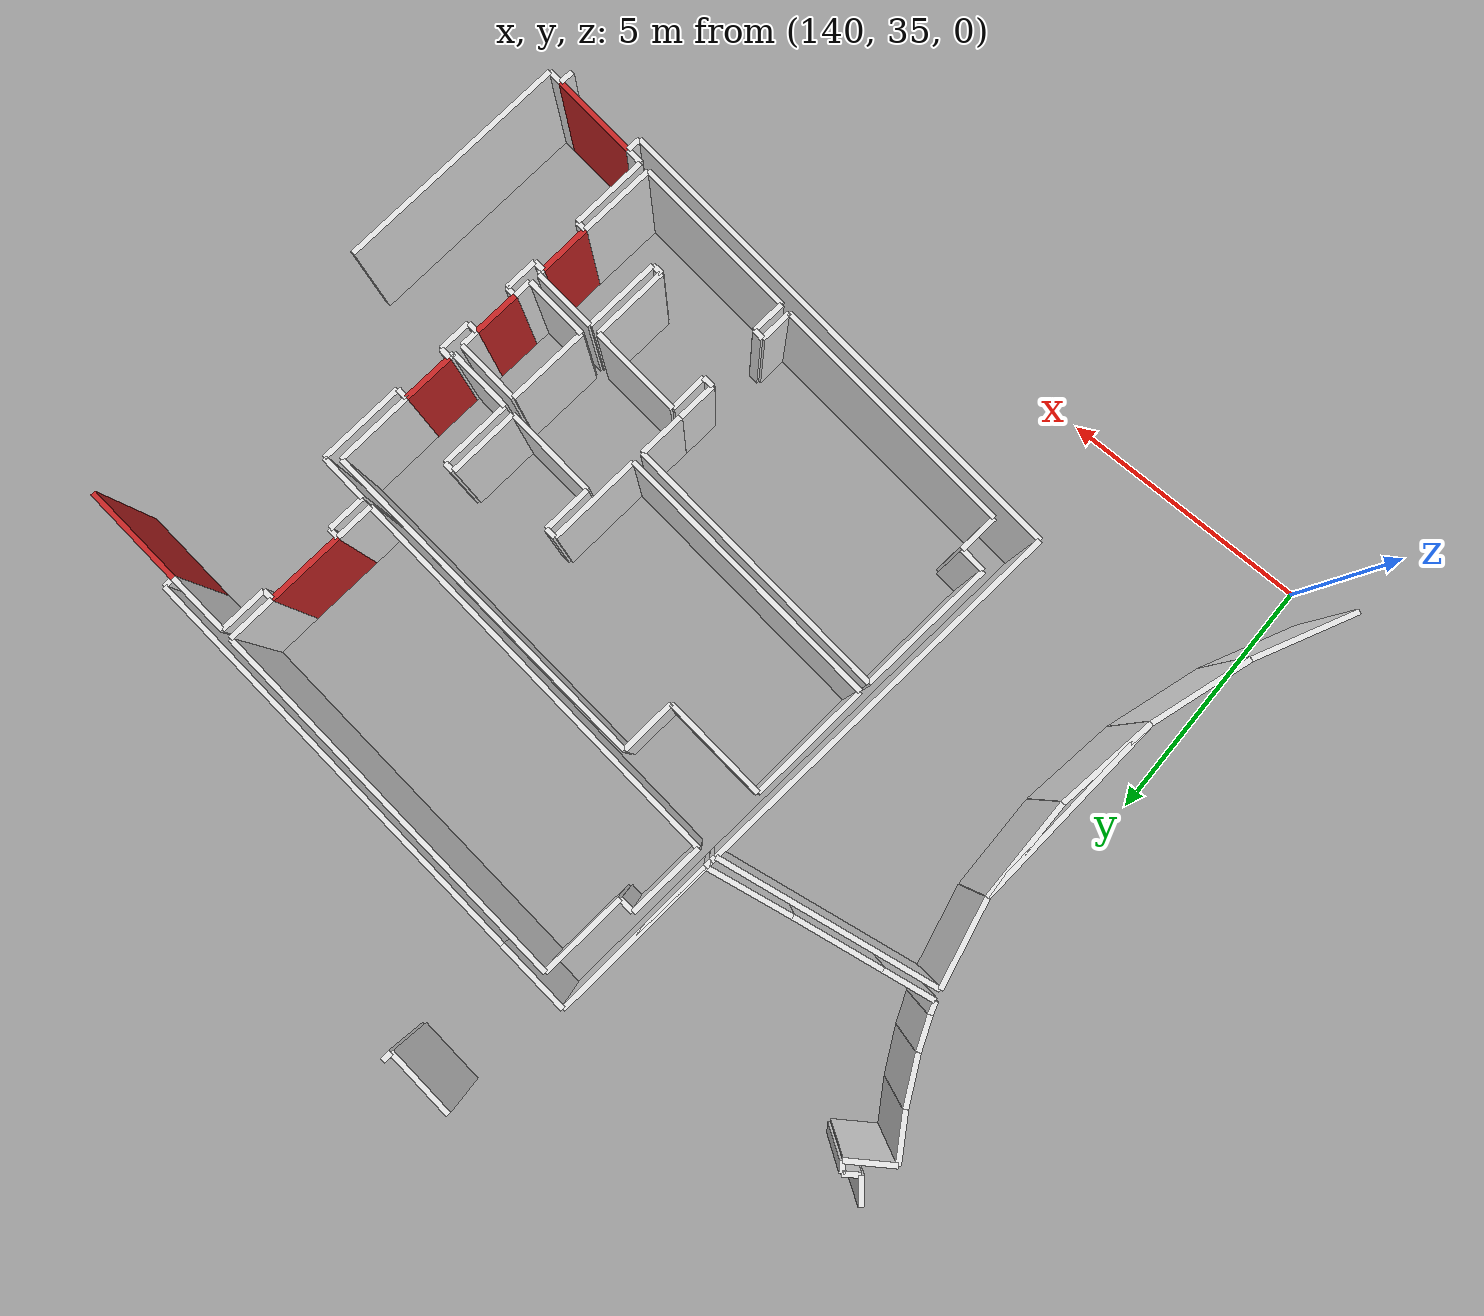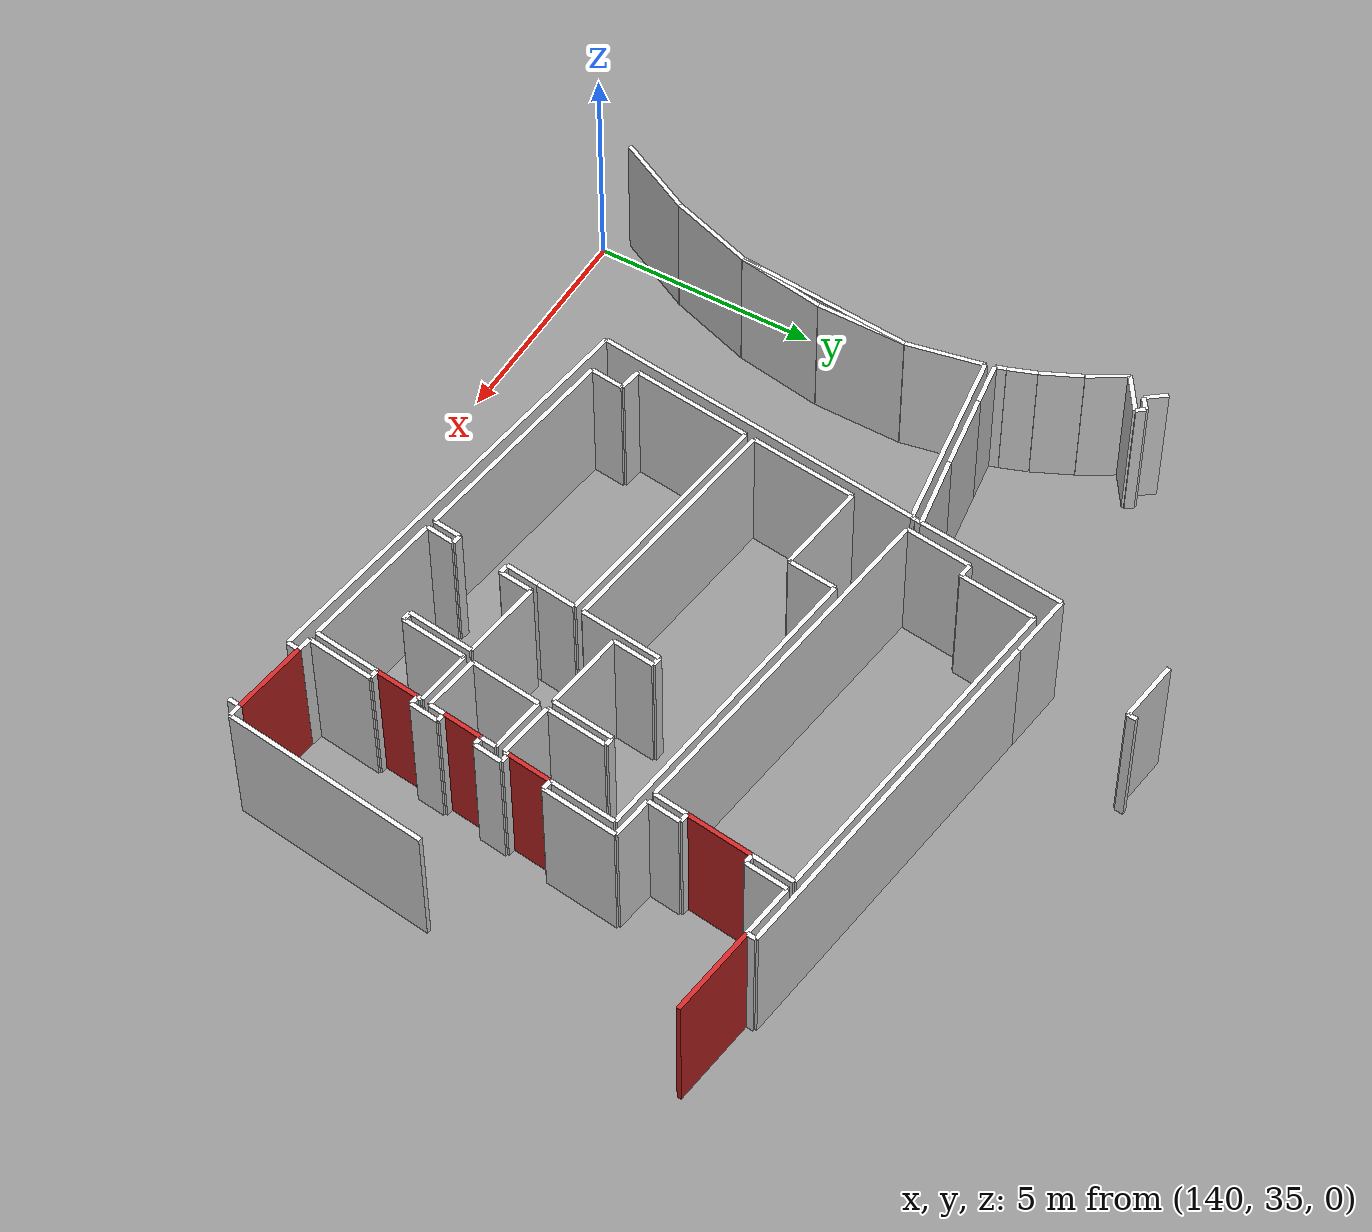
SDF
<sdf version="1.6">
 <world name="default">
  <model name="wall_153.8_39.0">
   <static>true</static>
   <pose>153.77499999999418 38.99500000011176 1.5 0 0 -1.6814535479881518</pose>
   <link name="link">
    <visual name="visual">
     <geometry><box><size>0.9960923654221514 0.1 3</size></box></geometry>
     <material>
      <script><uri>file://media/materials/scripts/gazebo.material</uri><name>Gazebo/Red</name></script>
     </material>
    </visual>
   </link>
  </model>
  <model name="wall_153.7_45.9">
   <static>true</static>
   <pose>153.6600000000035 45.92999999993481 1.5 0 0 -1.6918235466009592</pose>
   <link name="link">
    <visual name="visual">
     <geometry><box><size>1.4909057649436974 0.1 3</size></box></geometry>
     <material>
      <script><uri>file://media/materials/scripts/gazebo.material</uri><name>Gazebo/Red</name></script>
     </material>
    </visual>
   </link>
  </model>
  <model name="wall_154.0_40.6">
   <static>true</static>
   <pose>153.9649999999965 40.574999999953434 1.5 0 0 -1.693768196390317</pose>
   <link name="link">
    <visual name="visual">
     <geometry><box><size>0.8967719889926413 0.1 3</size></box></geometry>
     <material>
      <script><uri>file://media/materials/scripts/gazebo.material</uri><name>Gazebo/Red</name></script>
     </material>
    </visual>
   </link>
  </model>
  <model name="wall_156.3_47.3">
   <static>true</static>
   <pose>156.25500000000466 47.32000000006519 1.5 0 0 -0.12002333835124222</pose>
   <link name="link">
    <visual name="visual">
     <geometry><box><size>2.004420115606183 0.1 3</size></box></geometry>
     <material>
      <script><uri>file://media/materials/scripts/gazebo.material</uri><name>Gazebo/Red</name></script>
     </material>
    </visual>
   </link>
  </model>
  <model name="wall_154.2_42.2">
   <static>true</static>
   <pose>154.15000000002328 42.15500000002794 1.5 0 0 -1.6914199953995817</pose>
   <link name="link">
    <visual name="visual">
     <geometry><box><size>0.997246208074735 0.1 3</size></box></geometry>
     <material>
      <script><uri>file://media/materials/scripts/gazebo.material</uri><name>Gazebo/Red</name></script>
     </material>
    </visual>
   </link>
  </model>
  <model name="wall_154.9_36.9">
   <static>true</static>
   <pose>154.86999999999534 36.85000000009313 1.5 0 0 -0.11990398547329398</pose>
   <link name="link">
    <visual name="visual">
     <geometry><box><size>1.6720047847367918 0.1 3</size></box></geometry>
     <material>
      <script><uri>file://media/materials/scripts/gazebo.material</uri><name>Gazebo/Red</name></script>
     </material>
    </visual>
   </link>
  </model>
  <model name="wall_150.4_39.6">
   <static>true</static>
   <pose>150.3649999999907 39.61500000022352 1.5 0 0 1.4513674008194029</pose>
   <link name="link">
    <visual name="visual">
     <geometry><box><size>0.7553806987169667 0.1 3</size></box></geometry>
     <material>
      <script><uri>file://media/materials/scripts/gazebo.material</uri><name>Gazebo/White</name></script>
     </material>
    </visual>
   </link>
  </model>
  <model name="wall_150.5_40.4">
   <static>true</static>
   <pose>150.4649999999965 40.43000000016764 1.5 0 0 1.4464413321830076</pose>
   <link name="link">
    <visual name="visual">
     <geometry><box><size>0.8868483522074317 0.1 3</size></box></geometry>
     <material>
      <script><uri>file://media/materials/scripts/gazebo.material</uri><name>Gazebo/White</name></script>
     </material>
    </visual>
   </link>
  </model>
  <model name="wall_147.8_41.2">
   <static>true</static>
   <pose>147.83500000002095 41.18500000005588 1.5 0 0 3.0248080581405947</pose>
   <link name="link">
    <visual name="visual">
     <geometry><box><size>5.406829015218547 0.1 3</size></box></geometry>
     <material>
      <script><uri>file://media/materials/scripts/gazebo.material</uri><name>Gazebo/White</name></script>
     </material>
    </visual>
   </link>
  </model>
  <model name="wall_145.0_40.2">
   <static>true</static>
   <pose>144.9900000000198 40.16500000003725 1.5 0 0 -1.690077564147906</pose>
   <link name="link">
    <visual name="visual">
     <geometry><box><size>2.689107658612167 0.1 3</size></box></geometry>
     <material>
      <script><uri>file://media/materials/scripts/gazebo.material</uri><name>Gazebo/White</name></script>
     </material>
    </visual>
   </link>
  </model>
  <model name="wall_145.1_38.8">
   <static>true</static>
   <pose>145.0800000000163 38.800000000046566 1.5 0 0 -0.11942892612851068</pose>
   <link name="link">
    <visual name="visual">
     <geometry><box><size>0.5035871324872246 0.1 3</size></box></geometry>
     <material>
      <script><uri>file://media/materials/scripts/gazebo.material</uri><name>Gazebo/White</name></script>
     </material>
    </visual>
   </link>
  </model>
  <model name="wall_145.3_38.4">
   <static>true</static>
   <pose>145.2850000000035 38.389999999897555 1.5 0 0 -1.6886684299881376</pose>
   <link name="link">
    <visual name="visual">
     <geometry><box><size>0.7653103947893748 0.1 3</size></box></geometry>
     <material>
      <script><uri>file://media/materials/scripts/gazebo.material</uri><name>Gazebo/White</name></script>
     </material>
    </visual>
   </link>
  </model>
  <model name="wall_147.7_37.7">
   <static>true</static>
   <pose>147.67499999998836 37.7249999998603 1.5 0 0 -0.11651301006280392</pose>
   <link name="link">
    <visual name="visual">
     <geometry><box><size>4.90324382422122 0.1 3</size></box></geometry>
     <material>
      <script><uri>file://media/materials/scripts/gazebo.material</uri><name>Gazebo/White</name></script>
     </material>
    </visual>
   </link>
  </model>
  <model name="wall_150.1_37.8">
   <static>true</static>
   <pose>150.14499999998952 37.75499999988824 1.5 0 0 1.4601391055905788</pose>
   <link name="link">
    <visual name="visual">
     <geometry><box><size>0.6338769595593153 0.1 3</size></box></geometry>
     <material>
      <script><uri>file://media/materials/scripts/gazebo.material</uri><name>Gazebo/White</name></script>
     </material>
    </visual>
   </link>
  </model>
  <model name="wall_150.3_38.1">
   <static>true</static>
   <pose>150.27999999999884 38.05499999993481 1.5 0 0 -0.14888994659904642</pose>
   <link name="link">
    <visual name="visual">
     <geometry><box><size>0.20223748414268597 0.1 3</size></box></geometry>
     <material>
      <script><uri>file://media/materials/scripts/gazebo.material</uri><name>Gazebo/White</name></script>
     </material>
    </visual>
   </link>
  </model>
  <model name="wall_150.3_37.7">
   <static>true</static>
   <pose>150.3399999999965 37.71999999997206 1.5 0 0 -1.695151321341658</pose>
   <link name="link">
    <visual name="visual">
     <geometry><box><size>0.6449806199952839 0.1 3</size></box></geometry>
     <material>
      <script><uri>file://media/materials/scripts/gazebo.material</uri><name>Gazebo/White</name></script>
     </material>
    </visual>
   </link>
  </model>
  <model name="wall_151.9_37.2">
   <static>true</static>
   <pose>151.9199999999837 37.20999999996275 1.5 0 0 -0.11675057835937525</pose>
   <link name="link">
    <visual name="visual">
     <geometry><box><size>3.2622078413023767 0.1 3</size></box></geometry>
     <material>
      <script><uri>file://media/materials/scripts/gazebo.material</uri><name>Gazebo/White</name></script>
     </material>
    </visual>
   </link>
  </model>
  <model name="wall_153.6_37.8">
   <static>true</static>
   <pose>153.62999999997555 37.76000000000931 1.5 0 0 1.449769106988834</pose>
   <link name="link">
    <visual name="visual">
     <geometry><box><size>1.4909057649436974 0.1 3</size></box></geometry>
     <material>
      <script><uri>file://media/materials/scripts/gazebo.material</uri><name>Gazebo/White</name></script>
     </material>
    </visual>
   </link>
  </model>
  <model name="wall_153.8_39.5">
   <static>true</static>
   <pose>153.83500000002095 39.54000000003725 1.5 0 0 1.4711276738426837</pose>
   <link name="link">
    <visual name="visual">
     <geometry><box><size>0.10049875584145537 0.1 3</size></box></geometry>
     <material>
      <script><uri>file://media/materials/scripts/gazebo.material</uri><name>Gazebo/White</name></script>
     </material>
    </visual>
   </link>
  </model>
  <model name="wall_153.2_39.7">
   <static>true</static>
   <pose>153.22000000000116 39.65999999991618 1.5 0 0 3.0291655226601732</pose>
   <link name="link">
    <visual name="visual">
     <geometry><box><size>1.2478781992477335 0.1 3</size></box></geometry>
     <material>
      <script><uri>file://media/materials/scripts/gazebo.material</uri><name>Gazebo/White</name></script>
     </material>
    </visual>
   </link>
  </model>
  <model name="wall_152.5_39.0">
   <static>true</static>
   <pose>152.51499999998487 38.98999999999069 1.5 0 0 -1.6851599802083586</pose>
   <link name="link">
    <visual name="visual">
     <geometry><box><size>1.4897315194152685 0.1 3</size></box></geometry>
     <material>
      <script><uri>file://media/materials/scripts/gazebo.material</uri><name>Gazebo/White</name></script>
     </material>
    </visual>
   </link>
  </model>
  <model name="wall_152.3_38.3">
   <static>true</static>
   <pose>152.3299999999872 38.26000000000931 1.5 0 0 3.0419240010121844</pose>
   <link name="link">
    <visual name="visual">
     <geometry><box><size>0.20099751243585498 0.1 3</size></box></geometry>
     <material>
      <script><uri>file://media/materials/scripts/gazebo.material</uri><name>Gazebo/White</name></script>
     </material>
    </visual>
   </link>
  </model>
  <model name="wall_152.3_39.0">
   <static>true</static>
   <pose>152.31500000000233 39.01000000000931 1.5 0 0 1.4564326733426174</pose>
   <link name="link">
    <visual name="visual">
     <geometry><box><size>1.4897315194219107 0.1 3</size></box></geometry>
     <material>
      <script><uri>file://media/materials/scripts/gazebo.material</uri><name>Gazebo/White</name></script>
     </material>
    </visual>
   </link>
  </model>
  <model name="wall_151.5_39.9">
   <static>true</static>
   <pose>151.50500000000466 39.85499999998137 1.5 0 0 3.0248080581431034</pose>
   <link name="link">
    <visual name="visual">
     <geometry><box><size>1.8022763384447233 0.1 3</size></box></geometry>
     <material>
      <script><uri>file://media/materials/scripts/gazebo.material</uri><name>Gazebo/White</name></script>
     </material>
    </visual>
   </link>
  </model>
  <model name="wall_150.6_39.6">
   <static>true</static>
   <pose>150.57000000000698 39.59000000008382 1.5 0 0 -1.6784861976067038</pose>
   <link name="link">
    <visual name="visual">
     <geometry><box><size>0.7443117623918901 0.1 3</size></box></geometry>
     <material>
      <script><uri>file://media/materials/scripts/gazebo.material</uri><name>Gazebo/White</name></script>
     </material>
    </visual>
   </link>
  </model>
  <model name="wall_150.4_39.2">
   <static>true</static>
   <pose>150.42500000001746 39.230000000214204 1.5 0 0 3.0466409471685547</pose>
   <link name="link">
    <visual name="visual">
     <geometry><box><size>0.21095023111991618 0.1 3</size></box></geometry>
     <material>
      <script><uri>file://media/materials/scripts/gazebo.material</uri><name>Gazebo/White</name></script>
     </material>
    </visual>
   </link>
  </model>
  <model name="wall_153.8_47.1">
   <static>true</static>
   <pose>153.80499999999302 47.139999999897555 1.5 0 0 -1.6872877874817485</pose>
   <link name="link">
    <visual name="visual">
     <geometry><box><size>0.9464142855493431 0.1 3</size></box></geometry>
     <material>
      <script><uri>file://media/materials/scripts/gazebo.material</uri><name>Gazebo/White</name></script>
     </material>
    </visual>
   </link>
  </model>
  <model name="wall_153.5_44.8">
   <static>true</static>
   <pose>153.52499999999418 44.81499999994412 1.5 0 0 -1.6902252528468988</pose>
   <link name="link">
    <visual name="visual">
     <geometry><box><size>0.7553806987239018 0.1 3</size></box></geometry>
     <material>
      <script><uri>file://media/materials/scripts/gazebo.material</uri><name>Gazebo/White</name></script>
     </material>
    </visual>
   </link>
  </model>
  <model name="wall_149.6_44.9">
   <static>true</static>
   <pose>149.55499999999302 44.91500000003725 1.5 0 0 3.0211592075440525</pose>
   <link name="link">
    <visual name="visual">
     <geometry><box><size>7.907275131168029 0.1 3</size></box></geometry>
     <material>
      <script><uri>file://media/materials/scripts/gazebo.material</uri><name>Gazebo/White</name></script>
     </material>
    </visual>
   </link>
  </model>
  <model name="wall_145.7_46.1">
   <static>true</static>
   <pose>145.72000000000116 46.13000000012107 1.5 0 0 1.449769106988834</pose>
   <link name="link">
    <visual name="visual">
     <geometry><box><size>1.4909057649436974 0.1 3</size></box></geometry>
     <material>
      <script><uri>file://media/materials/scripts/gazebo.material</uri><name>Gazebo/White</name></script>
     </material>
    </visual>
   </link>
  </model>
  <model name="wall_146.0_46.9">
   <static>true</static>
   <pose>145.95999999999185 46.85000000009313 1.5 0 0 -0.132551532423765</pose>
   <link name="link">
    <visual name="visual">
     <geometry><box><size>0.3026549190018152 0.1 3</size></box></geometry>
     <material>
      <script><uri>file://media/materials/scripts/gazebo.material</uri><name>Gazebo/White</name></script>
     </material>
    </visual>
   </link>
  </model>
  <model name="wall_146.2_47.7">
   <static>true</static>
   <pose>146.20999999999185 47.675000000046566 1.5 0 0 1.4530010049136584</pose>
   <link name="link">
    <visual name="visual">
     <geometry><box><size>1.7017931718677757 0.1 3</size></box></geometry>
     <material>
      <script><uri>file://media/materials/scripts/gazebo.material</uri><name>Gazebo/White</name></script>
     </material>
    </visual>
   </link>
  </model>
  <model name="wall_150.1_48.1">
   <static>true</static>
   <pose>150.08499999999185 48.06499999994412 1.5 0 0 -0.11995117374483057</pose>
   <link name="link">
    <visual name="visual">
     <geometry><box><size>7.604643318400634 0.1 3</size></box></geometry>
     <material>
      <script><uri>file://media/materials/scripts/gazebo.material</uri><name>Gazebo/White</name></script>
     </material>
    </visual>
   </link>
  </model>
  <model name="wall_154.0_41.2">
   <static>true</static>
   <pose>154.04000000000815 41.18999999994412 1.5 0 0 1.4536875822379653</pose>
   <link name="link">
    <visual name="visual">
     <geometry><box><size>0.34234485522203445 0.1 3</size></box></geometry>
     <material>
      <script><uri>file://media/materials/scripts/gazebo.material</uri><name>Gazebo/White</name></script>
     </material>
    </visual>
   </link>
  </model>
  <model name="wall_153.4_41.4">
   <static>true</static>
   <pose>153.43499999999767 41.43499999982305 1.5 0 0 3.022163727644903</pose>
   <link name="link">
    <visual name="visual">
     <geometry><box><size>1.258967831190321 0.1 3</size></box></geometry>
     <material>
      <script><uri>file://media/materials/scripts/gazebo.material</uri><name>Gazebo/White</name></script>
     </material>
    </visual>
   </link>
  </model>
  <model name="wall_152.7_40.7">
   <static>true</static>
   <pose>152.7149999999965 40.71999999997206 1.5 0 0 -1.6904748161031404</pose>
   <link name="link">
    <visual name="visual">
     <geometry><box><size>1.5913830458958753 0.1 3</size></box></geometry>
     <material>
      <script><uri>file://media/materials/scripts/gazebo.material</uri><name>Gazebo/White</name></script>
     </material>
    </visual>
   </link>
  </model>
  <model name="wall_153.2_39.9">
   <static>true</static>
   <pose>153.24499999999534 39.85499999998137 1.5 0 0 -0.11942892631213106</pose>
   <link name="link">
    <visual name="visual">
     <geometry><box><size>1.2589678312458021 0.1 3</size></box></geometry>
     <material>
      <script><uri>file://media/materials/scripts/gazebo.material</uri><name>Gazebo/White</name></script>
     </material>
    </visual>
   </link>
  </model>
  <model name="wall_153.9_40.0">
   <static>true</static>
   <pose>153.88999999998487 39.954999999841675 1.5 0 0 1.4570043197403058</pose>
   <link name="link">
    <visual name="visual">
     <geometry><box><size>0.35227829916632136 0.1 3</size></box></geometry>
     <material>
      <script><uri>file://media/materials/scripts/gazebo.material</uri><name>Gazebo/White</name></script>
     </material>
    </visual>
   </link>
  </model>
  <model name="wall_155.3_47.5">
   <static>true</static>
   <pose>155.27000000001863 47.54000000003725 1.5 0 0 1.4711276743037347</pose>
   <link name="link">
    <visual name="visual">
     <geometry><box><size>0.20099751260961132 0.1 3</size></box></geometry>
     <material>
      <script><uri>file://media/materials/scripts/gazebo.material</uri><name>Gazebo/White</name></script>
     </material>
    </visual>
   </link>
  </model>
  <model name="wall_151.2_48.1">
   <static>true</static>
   <pose>151.21000000002095 48.13000000012107 1.5 0 0 3.021776205795211</pose>
   <link name="link">
    <visual name="visual">
     <geometry><box><size>8.198780397119496 0.1 3</size></box></geometry>
     <material>
      <script><uri>file://media/materials/scripts/gazebo.material</uri><name>Gazebo/White</name></script>
     </material>
    </visual>
   </link>
  </model>
  <model name="wall_147.5_51.2">
   <static>true</static>
   <pose>147.45000000001164 51.175000000046566 1.5 0 0 1.4659193879370842</pose>
   <link name="link">
    <visual name="visual">
     <geometry><box><size>0.19104973169180559 0.1 3</size></box></geometry>
     <material>
      <script><uri>file://media/materials/scripts/gazebo.material</uri><name>Gazebo/White</name></script>
     </material>
    </visual>
   </link>
  </model>
  <model name="wall_153.8_38.5">
   <static>true</static>
   <pose>153.81499999997322 38.48999999999069 1.5 0 0 3.0367157147638757</pose>
   <link name="link">
    <visual name="visual">
     <geometry><box><size>0.19104973174969345 0.1 3</size></box></geometry>
     <material>
      <script><uri>file://media/materials/scripts/gazebo.material</uri><name>Gazebo/White</name></script>
     </material>
    </visual>
   </link>
  </model>
  <model name="wall_153.9_39.5">
   <static>true</static>
   <pose>153.93000000002212 39.480000000214204 1.5 0 0 -0.09966865257760905</pose>
   <link name="link">
    <visual name="visual">
     <geometry><box><size>0.20099751243585498 0.1 3</size></box></geometry>
     <material>
      <script><uri>file://media/materials/scripts/gazebo.material</uri><name>Gazebo/White</name></script>
     </material>
    </visual>
   </link>
  </model>
  <model name="wall_154.1_39.8">
   <static>true</static>
   <pose>154.07000000000698 39.79000000003725 1.5 0 0 1.446441332248135</pose>
   <link name="link">
    <visual name="visual">
     <geometry><box><size>0.6449806195259987 0.1 3</size></box></geometry>
     <material>
      <script><uri>file://media/materials/scripts/gazebo.material</uri><name>Gazebo/White</name></script>
     </material>
    </visual>
   </link>
  </model>
  <model name="wall_154.0_40.1">
   <static>true</static>
   <pose>154.0099999999802 40.11999999987893 1.5 0 0 3.0419240010121844</pose>
   <link name="link">
    <visual name="visual">
     <geometry><box><size>0.20099751243585498 0.1 3</size></box></geometry>
     <material>
      <script><uri>file://media/materials/scripts/gazebo.material</uri><name>Gazebo/White</name></script>
     </material>
    </visual>
   </link>
  </model>
  <model name="wall_154.1_41.0">
   <static>true</static>
   <pose>154.11999999999534 41.01000000000931 1.5 0 0 -0.09966865260642473</pose>
   <link name="link">
    <visual name="visual">
     <geometry><box><size>0.20099751237793617 0.1 3</size></box></geometry>
     <material>
      <script><uri>file://media/materials/scripts/gazebo.material</uri><name>Gazebo/White</name></script>
     </material>
    </visual>
   </link>
  </model>
  <model name="wall_154.3_41.3">
   <static>true</static>
   <pose>154.2599999999802 41.31499999994412 1.5 0 0 1.444488209684028</pose>
   <link name="link">
    <visual name="visual">
     <geometry><box><size>0.6350590522634818 0.1 3</size></box></geometry>
     <material>
      <script><uri>file://media/materials/scripts/gazebo.material</uri><name>Gazebo/White</name></script>
     </material>
    </visual>
   </link>
  </model>
  <model name="wall_154.2_41.6">
   <static>true</static>
   <pose>154.19500000000698 41.64500000001863 1.5 0 0 2.999695597743866</pose>
   <link name="link">
    <visual name="visual">
     <geometry><box><size>0.21213203435596426 0.1 3</size></box></geometry>
     <material>
      <script><uri>file://media/materials/scripts/gazebo.material</uri><name>Gazebo/White</name></script>
     </material>
    </visual>
   </link>
  </model>
  <model name="wall_154.3_42.6">
   <static>true</static>
   <pose>154.31500000000233 42.63500000000931 1.5 0 0 -0.14189705367284136</pose>
   <link name="link">
    <visual name="visual">
     <geometry><box><size>0.2121320342901098 0.1 3</size></box></geometry>
     <material>
      <script><uri>file://media/materials/scripts/gazebo.material</uri><name>Gazebo/White</name></script>
     </material>
    </visual>
   </link>
  </model>
  <model name="wall_154.5_43.5">
   <static>true</static>
   <pose>154.51999999998952 43.45999999996275 1.5 0 0 1.4523063676091028</pose>
   <link name="link">
    <visual name="visual">
     <geometry><box><size>1.6918628783099707 0.1 3</size></box></geometry>
     <material>
      <script><uri>file://media/materials/scripts/gazebo.material</uri><name>Gazebo/White</name></script>
     </material>
    </visual>
   </link>
  </model>
  <model name="wall_154.1_44.4">
   <static>true</static>
   <pose>154.14999999999418 44.359999999869615 1.5 0 0 3.0146198638590396</pose>
   <link name="link">
    <visual name="visual">
     <geometry><box><size>0.9476286192550325 0.1 3</size></box></geometry>
     <material>
      <script><uri>file://media/materials/scripts/gazebo.material</uri><name>Gazebo/White</name></script>
     </material>
    </visual>
   </link>
  </model>
  <model name="wall_153.7_44.8">
   <static>true</static>
   <pose>153.72500000000582 44.79000000003725 1.5 0 0 1.4497691069877865</pose>
   <link name="link">
    <visual name="visual">
     <geometry><box><size>0.74545288270649 0.1 3</size></box></geometry>
     <material>
      <script><uri>file://media/materials/scripts/gazebo.material</uri><name>Gazebo/White</name></script>
     </material>
    </visual>
   </link>
  </model>
  <model name="wall_153.7_45.2">
   <static>true</static>
   <pose>153.6700000000128 45.175000000046566 1.5 0 0 2.992702706990747</pose>
   <link name="link">
    <visual name="visual">
     <geometry><box><size>0.20223748414268597 0.1 3</size></box></geometry>
     <material>
      <script><uri>file://media/materials/scripts/gazebo.material</uri><name>Gazebo/White</name></script>
     </material>
    </visual>
   </link>
  </model>
  <model name="wall_153.9_46.7">
   <static>true</static>
   <pose>153.85000000000582 46.65999999991618 1.5 0 0 -0.09966865257760905</pose>
   <link name="link">
    <visual name="visual">
     <geometry><box><size>0.20099751243585498 0.1 3</size></box></geometry>
     <material>
      <script><uri>file://media/materials/scripts/gazebo.material</uri><name>Gazebo/White</name></script>
     </material>
    </visual>
   </link>
  </model>
  <model name="wall_154.0_47.1">
   <static>true</static>
   <pose>154.00500000000466 47.11499999999069 1.5 0 0 1.4530637520266436</pose>
   <link name="link">
    <visual name="visual">
     <geometry><box><size>0.9364827816402892 0.1 3</size></box></geometry>
     <material>
      <script><uri>file://media/materials/scripts/gazebo.material</uri><name>Gazebo/White</name></script>
     </material>
    </visual>
   </link>
  </model>
  <model name="wall_154.7_47.5">
   <static>true</static>
   <pose>154.6600000000035 47.51000000000931 1.5 0 0 -0.11614162698606886</pose>
   <link name="link">
    <visual name="visual">
     <geometry><box><size>1.2081390648697887 0.1 3</size></box></geometry>
     <material>
      <script><uri>file://media/materials/scripts/gazebo.material</uri><name>Gazebo/White</name></script>
     </material>
    </visual>
   </link>
  </model>
  <model name="wall_156.2_39.0">
   <static>true</static>
   <pose>156.25 39.015000000130385 1.5 0 0 -1.6922006861437495</pose>
   <link name="link">
    <visual name="visual">
     <geometry><box><size>4.624035034328207 0.1 3</size></box></geometry>
     <material>
      <script><uri>file://media/materials/scripts/gazebo.material</uri><name>Gazebo/White</name></script>
     </material>
    </visual>
   </link>
  </model>
  <model name="wall_155.8_36.7">
   <static>true</static>
   <pose>155.83499999999185 36.735000000102445 1.5 0 0 3.0309354331494087</pose>
   <link name="link">
    <visual name="visual">
     <geometry><box><size>0.271661554082157 0.1 3</size></box></geometry>
     <material>
      <script><uri>file://media/materials/scripts/gazebo.material</uri><name>Gazebo/White</name></script>
     </material>
    </visual>
   </link>
  </model>
  <model name="wall_153.9_37.0">
   <static>true</static>
   <pose>153.8849999999802 36.97000000020489 1.5 0 0 3.0132694257848427</pose>
   <link name="link">
    <visual name="visual">
     <geometry><box><size>0.31256999216421383 0.1 3</size></box></geometry>
     <material>
      <script><uri>file://media/materials/scripts/gazebo.material</uri><name>Gazebo/White</name></script>
     </material>
    </visual>
   </link>
  </model>
  <model name="wall_153.8_37.7">
   <static>true</static>
   <pose>153.81999999997788 37.735000000102445 1.5 0 0 1.4505735401188582</pose>
   <link name="link">
    <visual name="visual">
     <geometry><box><size>1.5008331017391296 0.1 3</size></box></geometry>
     <material>
      <script><uri>file://media/materials/scripts/gazebo.material</uri><name>Gazebo/White</name></script>
     </material>
    </visual>
   </link>
  </model>
  <model name="wall_154.3_43.4">
   <static>true</static>
   <pose>154.2950000000128 43.39500000001863 1.5 0 0 -1.6843990475228636</pose>
   <link name="link">
    <visual name="visual">
     <geometry><box><size>1.4996666298416261 0.1 3</size></box></geometry>
     <material>
      <script><uri>file://media/materials/scripts/gazebo.material</uri><name>Gazebo/White</name></script>
     </material>
    </visual>
   </link>
  </model>
  <model name="wall_154.1_41.6">
   <static>true</static>
   <pose>154.08500000002095 41.610000000102445 1.5 0 0 -1.6704649792860586</pose>
   <link name="link">
    <visual name="visual">
     <geometry><box><size>0.10049875630480566 0.1 3</size></box></geometry>
     <material>
      <script><uri>file://media/materials/scripts/gazebo.material</uri><name>Gazebo/White</name></script>
     </material>
    </visual>
   </link>
  </model>
  <model name="wall_153.5_41.6">
   <static>true</static>
   <pose>153.4550000000163 41.63500000000931 1.5 0 0 3.022163727644903</pose>
   <link name="link">
    <visual name="visual">
     <geometry><box><size>1.258967831190321 0.1 3</size></box></geometry>
     <material>
      <script><uri>file://media/materials/scripts/gazebo.material</uri><name>Gazebo/White</name></script>
     </material>
    </visual>
   </link>
  </model>
  <model name="wall_152.9_42.4">
   <static>true</static>
   <pose>152.9100000000035 42.39999999990687 1.5 0 0 1.4553696664370197</pose>
   <link name="link">
    <visual name="visual">
     <geometry><box><size>1.3892443988310157 0.1 3</size></box></geometry>
     <material>
      <script><uri>file://media/materials/scripts/gazebo.material</uri><name>Gazebo/White</name></script>
     </material>
    </visual>
   </link>
  </model>
  <model name="wall_152.9_43.1">
   <static>true</static>
   <pose>152.88999999998487 43.0999999998603 1.5 0 0 3.0419240010121844</pose>
   <link name="link">
    <visual name="visual">
     <geometry><box><size>0.20099751243585498 0.1 3</size></box></geometry>
     <material>
      <script><uri>file://media/materials/scripts/gazebo.material</uri><name>Gazebo/White</name></script>
     </material>
    </visual>
   </link>
  </model>
  <model name="wall_152.7_42.4">
   <static>true</static>
   <pose>152.70999999999185 42.419999999925494 1.5 0 0 -1.6862229871527734</pose>
   <link name="link">
    <visual name="visual">
     <geometry><box><size>1.3892443988310157 0.1 3</size></box></geometry>
     <material>
      <script><uri>file://media/materials/scripts/gazebo.material</uri><name>Gazebo/White</name></script>
     </material>
    </visual>
   </link>
  </model>
  <model name="wall_151.7_41.8">
   <static>true</static>
   <pose>151.73500000001513 41.83499999996275 1.5 0 0 3.02480805813934</pose>
   <link name="link">
    <visual name="visual">
     <geometry><box><size>1.8022763383869123 0.1 3</size></box></geometry>
     <material>
      <script><uri>file://media/materials/scripts/gazebo.material</uri><name>Gazebo/White</name></script>
     </material>
    </visual>
   </link>
  </model>
  <model name="wall_150.9_42.4">
   <static>true</static>
   <pose>150.89500000001863 42.40999999991618 1.5 0 0 1.4543048661080447</pose>
   <link name="link">
    <visual name="visual">
     <geometry><box><size>0.9464142855493431 0.1 3</size></box></geometry>
     <material>
      <script><uri>file://media/materials/scripts/gazebo.material</uri><name>Gazebo/White</name></script>
     </material>
    </visual>
   </link>
  </model>
  <model name="wall_150.9_42.9">
   <static>true</static>
   <pose>150.85000000000582 42.889999999897555 1.5 0 0 3.0419240010121844</pose>
   <link name="link">
    <visual name="visual">
     <geometry><box><size>0.20099751243585498 0.1 3</size></box></geometry>
     <material>
      <script><uri>file://media/materials/scripts/gazebo.material</uri><name>Gazebo/White</name></script>
     </material>
    </visual>
   </link>
  </model>
  <model name="wall_150.6_42.0">
   <static>true</static>
   <pose>150.64499999998952 41.98999999999069 1.5 0 0 -1.6856729322336463</pose>
   <link name="link">
    <visual name="visual">
     <geometry><box><size>1.8320753257982048 0.1 3</size></box></geometry>
     <material>
      <script><uri>file://media/materials/scripts/gazebo.material</uri><name>Gazebo/White</name></script>
     </material>
    </visual>
   </link>
  </model>
  <model name="wall_147.9_41.4">
   <static>true</static>
   <pose>147.85499999998137 41.390000000130385 1.5 0 0 3.026645366783984</pose>
   <link name="link">
    <visual name="visual">
     <geometry><box><size>5.405672946089928 0.1 3</size></box></geometry>
     <material>
      <script><uri>file://media/materials/scripts/gazebo.material</uri><name>Gazebo/White</name></script>
     </material>
    </visual>
   </link>
  </model>
  <model name="wall_145.3_42.9">
   <static>true</static>
   <pose>145.30499999999302 42.88500000000931 1.5 0 0 1.4573613349631278</pose>
   <link name="link">
    <visual name="visual">
     <geometry><box><size>2.385330165476587 0.1 3</size></box></geometry>
     <material>
      <script><uri>file://media/materials/scripts/gazebo.material</uri><name>Gazebo/White</name></script>
     </material>
    </visual>
   </link>
  </model>
  <model name="wall_146.5_43.9">
   <static>true</static>
   <pose>146.45999999999185 43.949999999953434 1.5 0 0 -0.11710874445097873</pose>
   <link name="link">
    <visual name="visual">
     <geometry><box><size>2.0540691321857394 0.1 3</size></box></geometry>
     <material>
      <script><uri>file://media/materials/scripts/gazebo.material</uri><name>Gazebo/White</name></script>
     </material>
    </visual>
   </link>
  </model>
  <model name="wall_147.5_44.4">
   <static>true</static>
   <pose>147.53999999997905 44.37000000011176 1.5 0 0 1.460139105632832</pose>
   <link name="link">
    <visual name="visual">
     <geometry><box><size>1.086646216650026 0.1 3</size></box></geometry>
     <material>
      <script><uri>file://media/materials/scripts/gazebo.material</uri><name>Gazebo/White</name></script>
     </material>
    </visual>
   </link>
  </model>
  <model name="wall_151.0_44.5">
   <static>true</static>
   <pose>150.9899999999907 44.5250000001397 1.5 0 0 -0.11308479368536209</pose>
   <link name="link">
    <visual name="visual">
     <geometry><box><size>6.8235841022447685 0.1 3</size></box></geometry>
     <material>
      <script><uri>file://media/materials/scripts/gazebo.material</uri><name>Gazebo/White</name></script>
     </material>
    </visual>
   </link>
  </model>
  <model name="wall_146.8_51.2">
   <static>true</static>
   <pose>146.7600000000093 51.16500000003725 1.5 0 0 -0.12435499449408483</pose>
   <link name="link">
    <visual name="visual">
     <geometry><box><size>1.37058381718765 0.1 3</size></box></geometry>
     <material>
      <script><uri>file://media/materials/scripts/gazebo.material</uri><name>Gazebo/White</name></script>
     </material>
    </visual>
   </link>
  </model>
  <model name="wall_146.4_48.7">
   <static>true</static>
   <pose>146.42500000001746 48.705000000074506 1.5 0 0 3.0232668711350636</pose>
   <link name="link">
    <visual name="visual">
     <geometry><box><size>1.440069442754304 0.1 3</size></box></geometry>
     <material>
      <script><uri>file://media/materials/scripts/gazebo.material</uri><name>Gazebo/White</name></script>
     </material>
    </visual>
   </link>
  </model>
  <model name="wall_145.5_47.2">
   <static>true</static>
   <pose>145.52999999999884 47.169999999925494 1.5 0 0 -1.6814535479747077</pose>
   <link name="link">
    <visual name="visual">
     <geometry><box><size>3.259938649956506 0.1 3</size></box></geometry>
     <material>
      <script><uri>file://media/materials/scripts/gazebo.material</uri><name>Gazebo/White</name></script>
     </material>
    </visual>
   </link>
  </model>
  <model name="wall_144.5_45.4">
   <static>true</static>
   <pose>144.53999999997905 45.41499999980442 1.5 0 0 -2.9764439761635133</pose>
   <link name="link">
    <visual name="visual">
     <geometry><box><size>1.6423458831789883 0.1 3</size></box></geometry>
     <material>
      <script><uri>file://media/materials/scripts/gazebo.material</uri><name>Gazebo/White</name></script>
     </material>
    </visual>
   </link>
  </model>
  <model name="wall_142.9_45.1">
   <static>true</static>
   <pose>142.88999999998487 45.14999999990687 1.5 0 0 -2.9880488711795428</pose>
   <link name="link">
    <visual name="visual">
     <geometry><box><size>1.6999999999589122 0.1 3</size></box></geometry>
     <material>
      <script><uri>file://media/materials/scripts/gazebo.material</uri><name>Gazebo/White</name></script>
     </material>
    </visual>
   </link>
  </model>
  <model name="wall_141.6_44.9">
   <static>true</static>
   <pose>141.56500000000233 44.94500000006519 1.5 0 0 -2.9881687321003683</pose>
   <link name="link">
    <visual name="visual">
     <geometry><box><size>0.9815294187735064 0.1 3</size></box></geometry>
     <material>
      <script><uri>file://media/materials/scripts/gazebo.material</uri><name>Gazebo/White</name></script>
     </material>
    </visual>
   </link>
  </model>
  <model name="wall_141.0_45.0">
   <static>true</static>
   <pose>141.0450000000128 44.985000000102445 1.5 0 0 1.8662371639889692</pose>
   <link name="link">
    <visual name="visual">
     <geometry><box><size>0.24041630558764046 0.1 3</size></box></geometry>
     <material>
      <script><uri>file://media/materials/scripts/gazebo.material</uri><name>Gazebo/White</name></script>
     </material>
    </visual>
   </link>
  </model>
  <model name="wall_140.9_45.4">
   <static>true</static>
   <pose>140.89999999999418 45.39500000001863 1.5 0 0 1.9277082632742863</pose>
   <link name="link">
    <visual name="visual">
     <geometry><box><size>0.6296824595282008 0.1 3</size></box></geometry>
     <material>
      <script><uri>file://media/materials/scripts/gazebo.material</uri><name>Gazebo/White</name></script>
     </material>
    </visual>
   </link>
  </model>
  <model name="wall_140.6_46.1">
   <static>true</static>
   <pose>140.5899999999965 46.109999999869615 1.5 0 0 2.015215536730963</pose>
   <link name="link">
    <visual name="visual">
     <geometry><box><size>0.9303762678194886 0.1 3</size></box></geometry>
     <material>
      <script><uri>file://media/materials/scripts/gazebo.material</uri><name>Gazebo/White</name></script>
     </material>
    </visual>
   </link>
  </model>
  <model name="wall_140.2_46.9">
   <static>true</static>
   <pose>140.1600000000035 46.91499999980442 1.5 0 0 2.1093037835158754</pose>
   <link name="link">
    <visual name="visual">
     <geometry><box><size>0.8969392398863834 0.1 3</size></box></geometry>
     <material>
      <script><uri>file://media/materials/scripts/gazebo.material</uri><name>Gazebo/White</name></script>
     </material>
    </visual>
   </link>
  </model>
  <model name="wall_140.3_47.5">
   <static>true</static>
   <pose>140.30499999999302 47.549999999813735 1.5 0 0 0.5880026035475675</pose>
   <link name="link">
    <visual name="visual">
     <geometry><box><size>0.9013878188659973 0.1 3</size></box></geometry>
     <material>
      <script><uri>file://media/materials/scripts/gazebo.material</uri><name>Gazebo/White</name></script>
     </material>
    </visual>
   </link>
  </model>
  <model name="wall_140.6_47.9">
   <static>true</static>
   <pose>140.61999999999534 47.88500000000931 1.5 0 0 2.185459277614746</pose>
   <link name="link">
    <visual name="visual">
     <geometry><box><size>0.2080865207837242 0.1 3</size></box></geometry>
     <material>
      <script><uri>file://media/materials/scripts/gazebo.material</uri><name>Gazebo/White</name></script>
     </material>
    </visual>
   </link>
  </model>
  <model name="wall_140.4_47.9">
   <static>true</static>
   <pose>140.42999999999302 47.88000000012107 1.5 0 0 -2.536047989565728</pose>
   <link name="link">
    <visual name="visual">
     <geometry><box><size>0.31622776611991643 0.1 3</size></box></geometry>
     <material>
      <script><uri>file://media/materials/scripts/gazebo.material</uri><name>Gazebo/White</name></script>
     </material>
    </visual>
   </link>
  </model>
  <model name="wall_140.1_48.0">
   <static>true</static>
   <pose>140.14499999998952 47.98999999999069 1.5 0 0 2.2301063952368514</pose>
   <link name="link">
    <visual name="visual">
     <geometry><box><size>0.5060632370801604 0.1 3</size></box></geometry>
     <material>
      <script><uri>file://media/materials/scripts/gazebo.material</uri><name>Gazebo/White</name></script>
     </material>
    </visual>
   </link>
  </model>
  <model name="wall_140.0_36.3">
   <static>true</static>
   <pose>140.0 36.30499999993481 1.5 0 0 1.091454939073582</pose>
   <link name="link">
    <visual name="visual">
     <geometry><box><size>1.9948182874996538 0.1 3</size></box></geometry>
     <material>
      <script><uri>file://media/materials/scripts/gazebo.material</uri><name>Gazebo/White</name></script>
     </material>
    </visual>
   </link>
  </model>
  <model name="wall_140.8_38.1">
   <static>true</static>
   <pose>140.77999999999884 38.13500000000931 1.5 0 0 1.244291450100456</pose>
   <link name="link">
    <visual name="visual">
     <geometry><box><size>1.9954197554490212 0.1 3</size></box></geometry>
     <material>
      <script><uri>file://media/materials/scripts/gazebo.material</uri><name>Gazebo/White</name></script>
     </material>
    </visual>
   </link>
  </model>
  <model name="wall_141.3_40.1">
   <static>true</static>
   <pose>141.26499999998487 40.06000000005588 1.5 0 0 1.4039933911592954</pose>
   <link name="link">
    <visual name="visual">
     <geometry><box><size>1.9875864760721043 0.1 3</size></box></geometry>
     <material>
      <script><uri>file://media/materials/scripts/gazebo.material</uri><name>Gazebo/White</name></script>
     </material>
    </visual>
   </link>
  </model>
  <model name="wall_141.4_42.0">
   <static>true</static>
   <pose>141.44000000000233 42.03499999991618 1.5 0 0 1.5607464138912803</pose>
   <link name="link">
    <visual name="visual">
     <geometry><box><size>1.9901004997328684 0.1 3</size></box></geometry>
     <material>
      <script><uri>file://media/materials/scripts/gazebo.material</uri><name>Gazebo/White</name></script>
     </material>
    </visual>
   </link>
  </model>
  <model name="wall_141.3_43.9">
   <static>true</static>
   <pose>141.29000000000815 43.85499999998137 1.5 0 0 1.7623576470859033</pose>
   <link name="link">
    <visual name="visual">
     <geometry><box><size>1.6807438832950772 0.1 3</size></box></geometry>
     <material>
      <script><uri>file://media/materials/scripts/gazebo.material</uri><name>Gazebo/White</name></script>
     </material>
    </visual>
   </link>
  </model>
  <model name="wall_143.2_45.0">
   <static>true</static>
   <pose>143.22500000000582 45.0 1.5 0 0 0.15157309554865728</pose>
   <link name="link">
    <visual name="visual">
     <geometry><box><size>4.238596465764388 0.1 3</size></box></geometry>
     <material>
      <script><uri>file://media/materials/scripts/gazebo.material</uri><name>Gazebo/White</name></script>
     </material>
    </visual>
   </link>
  </model>
  <model name="wall_144.9_41.6">
   <static>true</static>
   <pose>144.8649999999907 41.574999999953434 1.5 0 0 -1.6916990911057475</pose>
   <link name="link">
    <visual name="visual">
     <geometry><box><size>7.545077865498275 0.1 3</size></box></geometry>
     <material>
      <script><uri>file://media/materials/scripts/gazebo.material</uri><name>Gazebo/White</name></script>
     </material>
    </visual>
   </link>
  </model>
  <model name="wall_149.2_37.3">
   <static>true</static>
   <pose>149.20999999999185 37.25500000012107 1.5 0 0 -0.11922354502951144</pose>
   <link name="link">
    <visual name="visual">
     <geometry><box><size>9.668634857127264 0.1 3</size></box></geometry>
     <material>
      <script><uri>file://media/materials/scripts/gazebo.material</uri><name>Gazebo/White</name></script>
     </material>
    </visual>
   </link>
  </model>
  <model name="wall_154.0_36.8">
   <static>true</static>
   <pose>154.02499999999418 36.81500000017695 1.5 0 0 1.4601391057393092</pose>
   <link name="link">
    <visual name="visual">
     <geometry><box><size>0.2716615541592925 0.1 3</size></box></geometry>
     <material>
      <script><uri>file://media/materials/scripts/gazebo.material</uri><name>Gazebo/White</name></script>
     </material>
    </visual>
   </link>
  </model>
  <model name="wall_155.7_36.6">
   <static>true</static>
   <pose>155.68499999999767 36.61499999999069 1.5 0 0 -1.681453548063439</pose>
   <link name="link">
    <visual name="visual">
     <geometry><box><size>0.27166155416572046 0.1 3</size></box></geometry>
     <material>
      <script><uri>file://media/materials/scripts/gazebo.material</uri><name>Gazebo/White</name></script>
     </material>
    </visual>
   </link>
  </model>
  <model name="wall_145.5_47.1">
   <static>true</static>
   <pose>145.51500000001397 47.05499999993481 1.5 0 0 -1.6827185694293054</pose>
   <link name="link">
    <visual name="visual">
     <geometry><box><size>3.4918476486572034 0.1 3</size></box></geometry>
     <material>
      <script><uri>file://media/materials/scripts/gazebo.material</uri><name>Gazebo/White</name></script>
     </material>
    </visual>
   </link>
  </model>
  <model name="wall_141.3_41.1">
   <static>true</static>
   <pose>141.27499999999418 41.05499999993481 1.5 0 0 -1.659173112954737</pose>
   <link name="link">
    <visual name="visual">
     <geometry><box><size>3.9654760115044465 0.1 3</size></box></geometry>
     <material>
      <script><uri>file://media/materials/scripts/gazebo.material</uri><name>Gazebo/White</name></script>
     </material>
    </visual>
   </link>
  </model>
  <model name="wall_145.3_45.4">
   <static>true</static>
   <pose>145.3300000000163 45.36999999987893 1.5 0 0 1.373400766945016</pose>
   <link name="link">
    <visual name="visual">
     <geometry><box><size>0.10198039036683233 0.1 3</size></box></geometry>
     <material>
      <script><uri>file://media/materials/scripts/gazebo.material</uri><name>Gazebo/White</name></script>
     </material>
    </visual>
   </link>
  </model>
  <model name="wall_145.3_45.5">
   <static>true</static>
   <pose>145.34500000000116 45.484999999869615 1.5 0 0 1.4940244358332768</pose>
   <link name="link">
    <visual name="visual">
     <geometry><box><size>0.13038404798887343 0.1 3</size></box></geometry>
     <material>
      <script><uri>file://media/materials/scripts/gazebo.material</uri><name>Gazebo/White</name></script>
     </material>
    </visual>
   </link>
  </model>
 </world>
</sdf>
